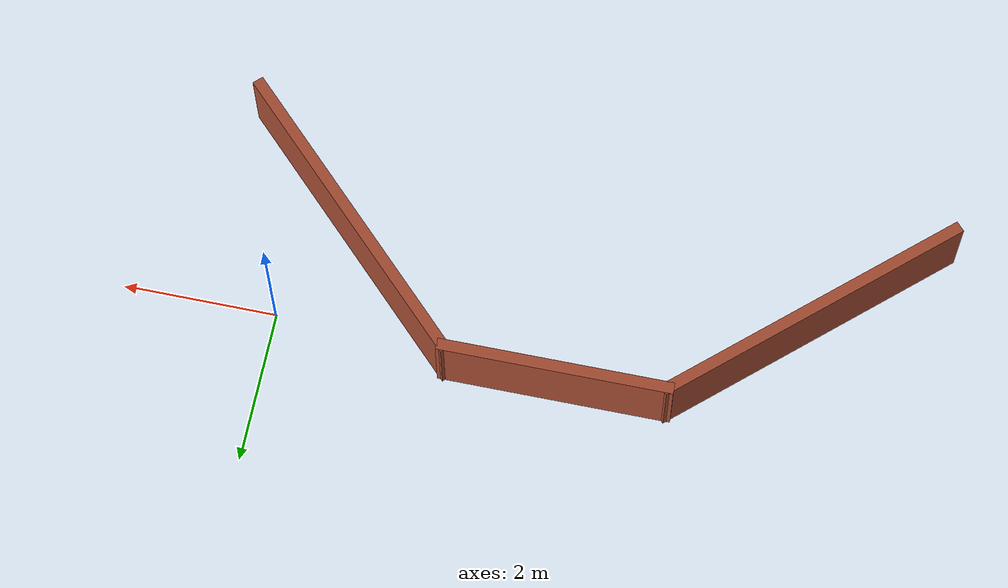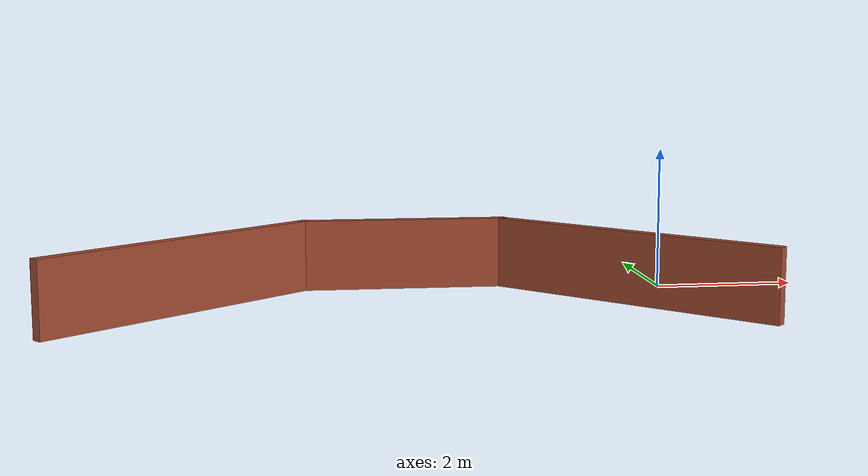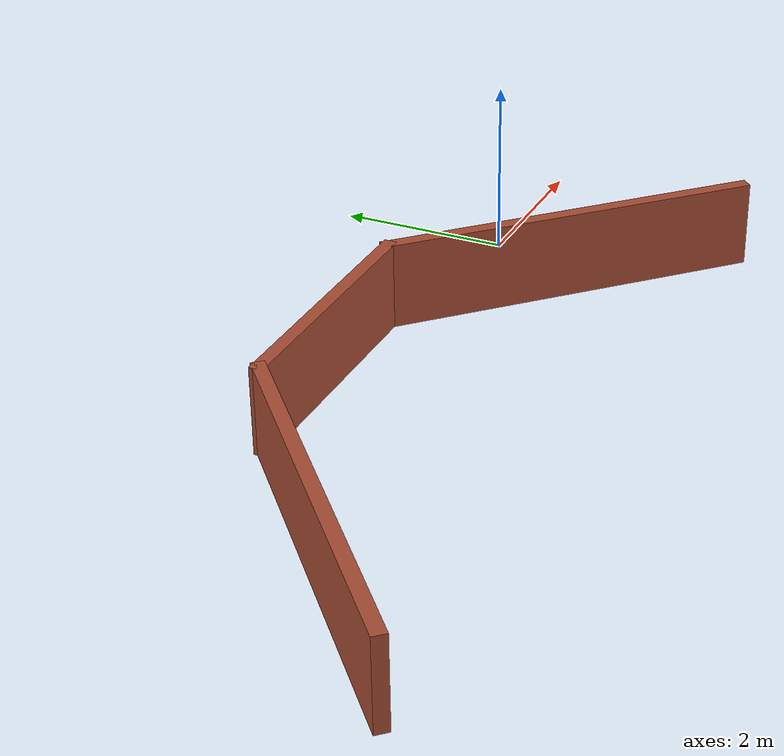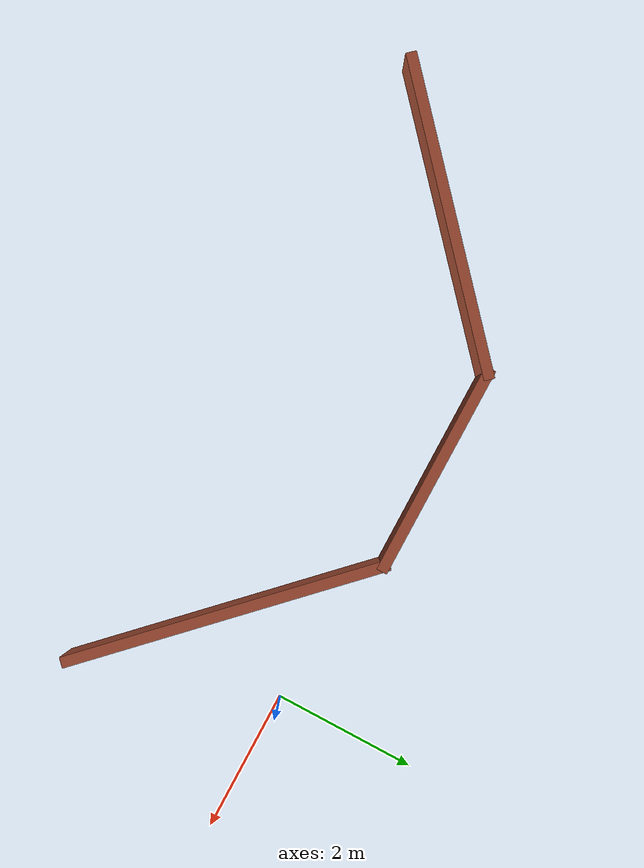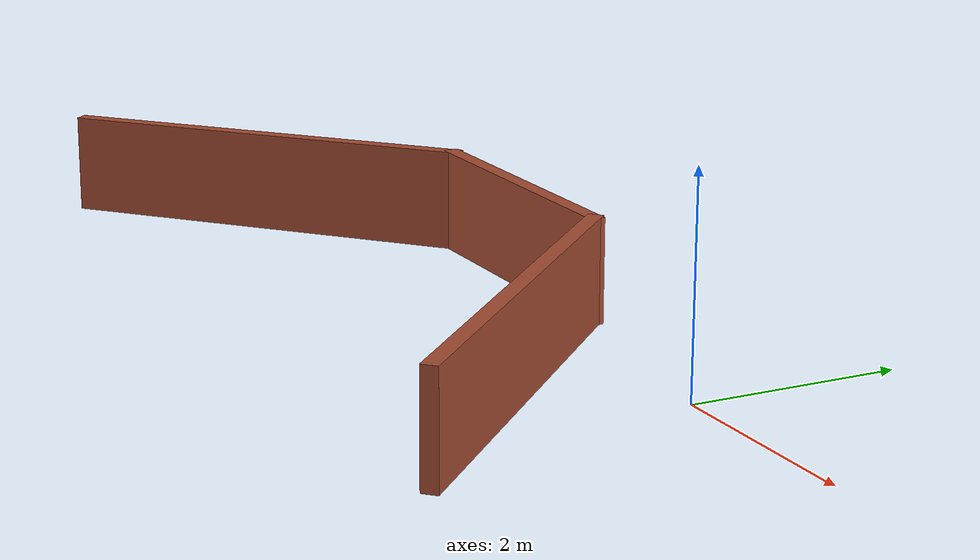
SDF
<?xml version='1.0'?>
<sdf version='1.7'>
  <model name='brick_wall'>
    <pose>-3.75736 -1.176 0 0 -0 0</pose>
    <link name='Wall_0'>
      <collision name='Wall_0_Collision'>
        <geometry>
          <box>
            <size>4.389 0.15 1</size>
          </box>
        </geometry>
        <pose>0 0 0.5 0 -0 0</pose>
      </collision>
      <visual name='Wall_0_Visual'>
        <pose>0 0 0.5 0 -0 0</pose>
        <geometry>
          <box>
            <size>4.389 0.15 1</size>
          </box>
        </geometry>
        <material>
          <script>
            <uri>file://media/materials/scripts/gazebo.material</uri>
            <name>Gazebo/Bricks</name>
          </script>
          <ambient>1 1 1 1</ambient>
        </material>
        <meta>
          <layer>0</layer>
        </meta>
      </visual>
      <pose>-2.95014 0.118 0 0 -0 0.72915</pose>
    </link>
    <link name='Wall_1'>
      <collision name='Wall_1_Collision'>
        <geometry>
          <box>
            <size>3 0.15 1</size>
          </box>
        </geometry>
        <pose>0 0 0.5 0 -0 0</pose>
      </collision>
      <visual name='Wall_1_Visual'>
        <pose>0 0 0.5 0 -0 0</pose>
        <geometry>
          <box>
            <size>3 0.15 1</size>
          </box>
        </geometry>
        <material>
          <script>
            <uri>file://media/materials/scripts/gazebo.material</uri>
            <name>Gazebo/Bricks</name>
          </script>
          <ambient>1 1 1 1</ambient>
        </material>
        <meta>
          <layer>0</layer>
        </meta>
      </visual>
      <pose>0.055364 1.53 0 0 -0 0</pose>
    </link>
    <link name='Wall_2'>
      <collision name='Wall_2_Collision'>
        <geometry>
          <box>
            <size>4.471 0.15 1</size>
          </box>
        </geometry>
        <pose>0 0 0.5 0 -0 0</pose>
      </collision>
      <visual name='Wall_2_Visual'>
        <pose>0 0 0.5 0 -0 0</pose>
        <geometry>
          <box>
            <size>4.471 0.15 1</size>
          </box>
        </geometry>
        <material>
          <script>
            <uri>file://media/materials/scripts/gazebo.material</uri>
            <name>Gazebo/Bricks</name>
          </script>
          <ambient>1 1 1 1</ambient>
        </material>
        <meta>
          <layer>0</layer>
        </meta>
      </visual>
      <pose>3.00536 0 0 0 -0 -0.787035</pose>
    </link>
    <static>1</static>
  </model>
</sdf>
